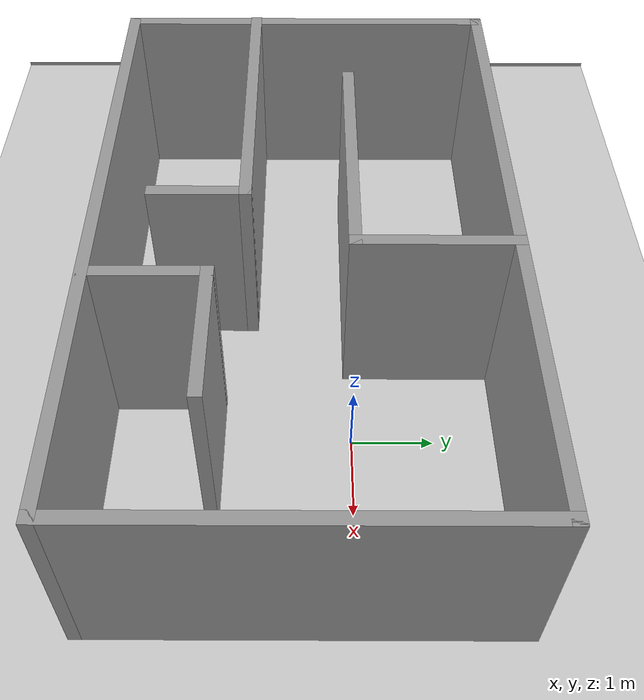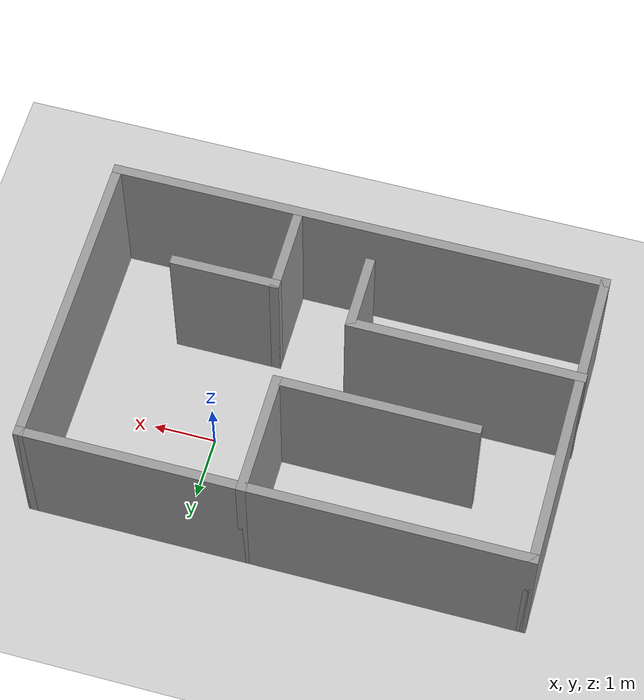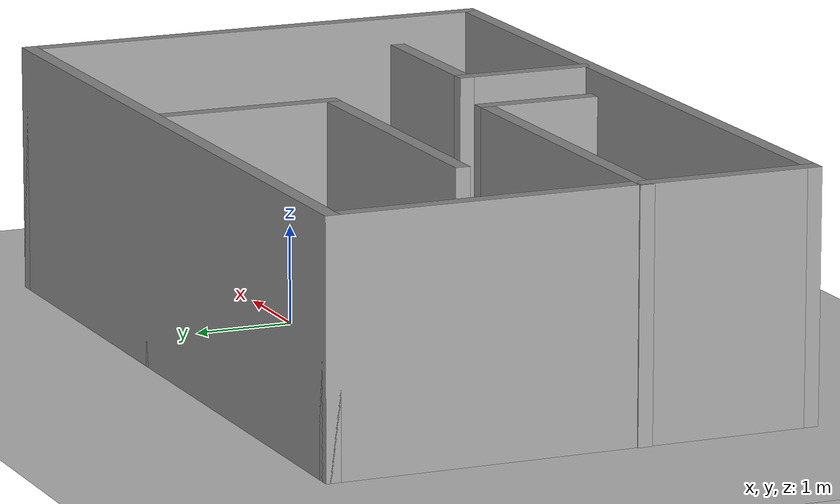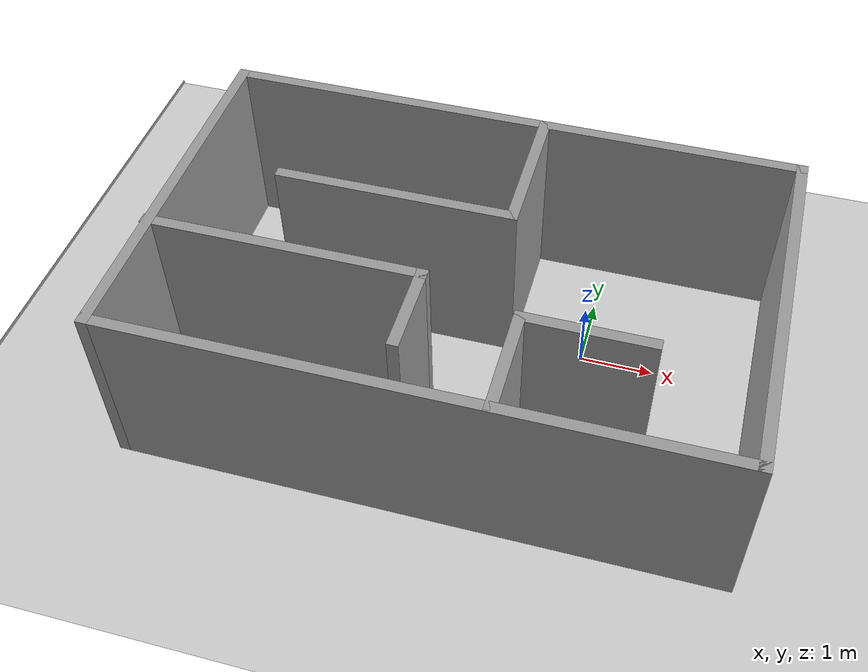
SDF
<sdf version="1.7">
 <world name="default">
  <light name="sun" type="directional">
   <pose>0 0 10 0 -0 0</pose>
   <diffuse>0.8 0.8 0.8 1</diffuse>
   <specular>0.2 0.2 0.2 1</specular>
   <attenuation>
    <range>1000</range>
    <constant>0.9</constant>
    <linear>0.01</linear>
    <quadratic>0.001</quadratic>
   </attenuation>
   <direction>-0.5 0.1 -0.9</direction>
   <spot><inner_angle>0</inner_angle><outer_angle>0</outer_angle><falloff>0</falloff></spot>
  </light>
  <model name="ground_plane">
   <static>1</static>
   <link name="link">
    <collision name="collision">
     <geometry><plane><normal>0 0 1</normal><size>100 100</size></plane></geometry>
     <surface>
      <contact><collide_bitmask>65535</collide_bitmask></contact>
      <friction><ode><mu>100</mu><mu2>50</mu2></ode></friction>
     </surface>
    </collision>
    <visual name="visual">
     <cast_shadows>0</cast_shadows>
     <geometry><plane><normal>0 0 1</normal><size>100 100</size></plane></geometry>
     <material>
      <script><uri>file://media/materials/scripts/gazebo.material</uri><name>Gazebo/Grey</name></script>
     </material>
    </visual>
   </link>
  </model>
  <gravity>0 0 -9.8</gravity>
  <magnetic_field>6e-06 2.3e-05 -4.2e-05</magnetic_field>
  <atmosphere type="adiabatic"/>
  <physics type="ode">
   <max_step_size>0.001</max_step_size>
   <real_time_factor>1</real_time_factor>
   <real_time_update_rate>1000</real_time_update_rate>
  </physics>
  <scene><ambient>0.4 0.4 0.4 1</ambient><background>0.7 0.7 0.7 1</background><shadows>1</shadows></scene>
  <spherical_coordinates>
   <surface_model>EARTH_WGS84</surface_model>
   <latitude_deg>0</latitude_deg>
   <longitude_deg>0</longitude_deg>
   <elevation>0</elevation>
   <heading_deg>0</heading_deg>
  </spherical_coordinates>
  <model name="ground_plane_0">
   <static>1</static>
   <link name="link">
    <collision name="collision">
     <geometry><plane><normal>0 0 1</normal><size>100 100</size></plane></geometry>
     <surface>
      <contact><collide_bitmask>65535</collide_bitmask></contact>
      <friction><ode><mu>100</mu><mu2>50</mu2></ode></friction>
     </surface>
    </collision>
    <visual name="visual">
     <cast_shadows>0</cast_shadows>
     <geometry><plane><normal>0 0 1</normal><size>100 100</size></plane></geometry>
     <material>
      <script><uri>file://media/materials/scripts/gazebo.material</uri><name>Gazebo/Grey</name></script>
     </material>
    </visual>
   </link>
   <pose>-78.1043 -31.746 0 0 -0 0</pose>
  </model>
  <model name="room">
   <pose>-1.53879 -0.468209 0 0 -0 0</pose>
   <link name="Wall_10">
    <collision name="Wall_10_Collision">
     <geometry><box><size>3.25 0.15 2.5</size></box></geometry>
     <pose>0 0 1.25 0 -0 0</pose>
    </collision>
    <visual name="Wall_10_Visual">
     <pose>0 0 1.25 0 -0 0</pose>
     <geometry><box><size>3.25 0.15 2.5</size></box></geometry>
     <material>
      <script><uri>file://media/materials/scripts/gazebo.material</uri><name>Gazebo/Grey</name></script>
      <ambient>1 1 1 1</ambient>
     </material>
     <meta><layer>0</layer></meta>
    </visual>
    <pose>-1.06763 0.462631 0 0 -0 3.14159</pose>
   </link>
   <link name="Wall_12">
    <collision name="Wall_12_Collision">
     <geometry><box><size>3.75 0.15 2.5</size></box></geometry>
     <pose>0 0 1.25 0 -0 0</pose>
    </collision>
    <visual name="Wall_12_Visual">
     <pose>0 0 1.25 0 -0 0</pose>
     <geometry><box><size>3.75 0.15 2.5</size></box></geometry>
     <material>
      <script><uri>file://media/materials/scripts/gazebo.material</uri><name>Gazebo/Grey</name></script>
      <ambient>1 1 1 1</ambient>
     </material>
     <meta><layer>0</layer></meta>
    </visual>
    <pose>-2.13362 -0.80962 0 0 -0 0</pose>
   </link>
   <link name="Wall_13">
    <collision name="Wall_13_Collision">
     <geometry><box><size>1.25 0.15 2.5</size></box></geometry>
     <pose>0 0 1.25 0 -0 0</pose>
    </collision>
    <visual name="Wall_13_Visual">
     <pose>0 0 1.25 0 -0 0</pose>
     <geometry><box><size>1.25 0.15 2.5</size></box></geometry>
     <material>
      <script><uri>file://media/materials/scripts/gazebo.material</uri><name>Gazebo/Grey</name></script>
      <ambient>1 1 1 1</ambient>
     </material>
     <meta><layer>0</layer></meta>
    </visual>
    <pose>-0.333625 -1.35962 0 0 -0 -1.5708</pose>
   </link>
   <link name="Wall_15">
    <collision name="Wall_15_Collision">
     <geometry><box><size>1.5 0.15 2.5</size></box></geometry>
     <pose>0 0 1.25 0 -0 0</pose>
    </collision>
    <visual name="Wall_15_Visual">
     <pose>0 0 1.25 0 -0 0</pose>
     <geometry><box><size>1.5 0.15 2.5</size></box></geometry>
     <material>
      <script><uri>file://media/materials/scripts/gazebo.material</uri><name>Gazebo/Grey</name></script>
      <ambient>1 1 1 1</ambient>
     </material>
     <meta><layer>0</layer></meta>
    </visual>
    <pose>0.965375 -1.84237 0 0 -0 1.5708</pose>
   </link>
   <link name="Wall_16">
    <collision name="Wall_16_Collision">
     <geometry><box><size>1.75 0.15 2.5</size></box></geometry>
     <pose>0 0 1.25 0 -0 0</pose>
    </collision>
    <visual name="Wall_16_Visual">
     <pose>0 0 1.25 0 -0 0</pose>
     <geometry><box><size>1.75 0.15 2.5</size></box></geometry>
     <material>
      <script><uri>file://media/materials/scripts/gazebo.material</uri><name>Gazebo/Grey</name></script>
      <ambient>1 1 1 1</ambient>
     </material>
     <meta><layer>0</layer></meta>
    </visual>
    <pose>1.76537 -1.16737 0 0 -0 0</pose>
   </link>
   <link name="Wall_3">
    <collision name="Wall_3_Collision">
     <geometry><box><size>8 0.15 2.5</size></box></geometry>
     <pose>0 0 1.25 0 -0 0</pose>
    </collision>
    <visual name="Wall_3_Visual">
     <pose>0 0 1.25 0 -0 0</pose>
     <geometry><box><size>8 0.15 2.5</size></box></geometry>
     <material>
      <script><uri>file://media/materials/scripts/gazebo.material</uri><name>Gazebo/Grey</name></script>
      <ambient>1 1 1 1</ambient>
     </material>
     <meta><layer>0</layer></meta>
    </visual>
    <pose>0.008625 2.31263 0 0 -0 0</pose>
   </link>
   <link name="Wall_4">
    <collision name="Wall_4_Collision">
     <geometry><box><size>5 0.15 2.5</size></box></geometry>
     <pose>0 0 1.25 0 -0 0</pose>
    </collision>
    <visual name="Wall_4_Visual">
     <pose>0 0 1.25 0 -0 0</pose>
     <geometry><box><size>5 0.15 2.5</size></box></geometry>
     <material>
      <script><uri>file://media/materials/scripts/gazebo.material</uri><name>Gazebo/Grey</name></script>
      <ambient>1 1 1 1</ambient>
     </material>
     <meta><layer>0</layer></meta>
    </visual>
    <pose>3.93363 -0.11237 0 0 -0 -1.5708</pose>
   </link>
   <link name="Wall_5">
    <collision name="Wall_5_Collision">
     <geometry><box><size>8 0.15 2.5</size></box></geometry>
     <pose>0 0 1.25 0 -0 0</pose>
    </collision>
    <visual name="Wall_5_Visual">
     <pose>0 0 1.25 0 -0 0</pose>
     <geometry><box><size>8 0.15 2.5</size></box></geometry>
     <material>
      <script><uri>file://media/materials/scripts/gazebo.material</uri><name>Gazebo/Grey</name></script>
      <ambient>1 1 1 1</ambient>
     </material>
     <meta><layer>0</layer></meta>
    </visual>
    <pose>0.008625 -2.53737 0 0 -0 3.14159</pose>
   </link>
   <link name="Wall_6">
    <collision name="Wall_6_Collision">
     <geometry><box><size>5 0.15 2.5</size></box></geometry>
     <pose>0 0 1.25 0 -0 0</pose>
    </collision>
    <visual name="Wall_6_Visual">
     <pose>0 0 1.25 0 -0 0</pose>
     <geometry><box><size>5 0.15 2.5</size></box></geometry>
     <material>
      <script><uri>file://media/materials/scripts/gazebo.material</uri><name>Gazebo/Grey</name></script>
      <ambient>1 1 1 1</ambient>
     </material>
     <meta><layer>0</layer></meta>
    </visual>
    <pose>-3.91637 -0.11237 0 0 -0 1.5708</pose>
   </link>
   <link name="Wall_7">
    <collision name="Wall_7_Collision">
     <geometry><box><size>0.15 0.15 2.5</size></box></geometry>
     <pose>0 0 1.25 0 -0 0</pose>
    </collision>
    <visual name="Wall_7_Visual">
     <pose>0 0 1.25 0 -0 0</pose>
     <geometry><box><size>0.15 0.15 2.5</size></box></geometry>
     <material>
      <script><uri>file://media/materials/scripts/gazebo.material</uri><name>Gazebo/Grey</name></script>
      <ambient>1 1 1 1</ambient>
     </material>
     <meta><layer>0</layer></meta>
    </visual>
    <pose>-3.91637 2.31263 0 0 -0 0</pose>
   </link>
   <link name="Wall_9">
    <collision name="Wall_9_Collision">
     <geometry><box><size>2 0.15 2.5</size></box></geometry>
     <pose>0 0 1.25 0 -0 0</pose>
    </collision>
    <visual name="Wall_9_Visual">
     <pose>0 0 1.25 0 -0 0</pose>
     <geometry><box><size>2 0.15 2.5</size></box></geometry>
     <material>
      <script><uri>file://media/materials/scripts/gazebo.material</uri><name>Gazebo/Grey</name></script>
      <ambient>1 1 1 1</ambient>
     </material>
     <meta><layer>0</layer></meta>
    </visual>
    <pose>0.482375 1.38763 0 0 -0 -1.5708</pose>
   </link>
   <static>1</static>
  </model>
 </world>
</sdf>
